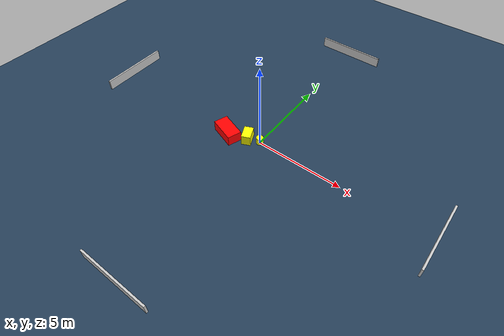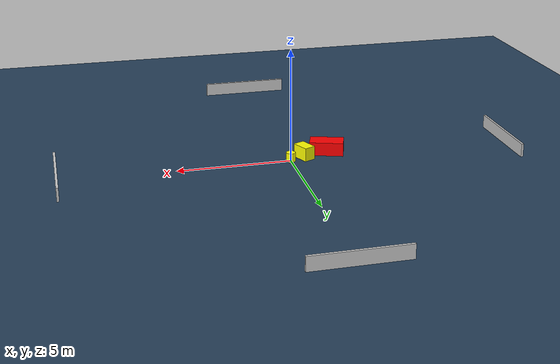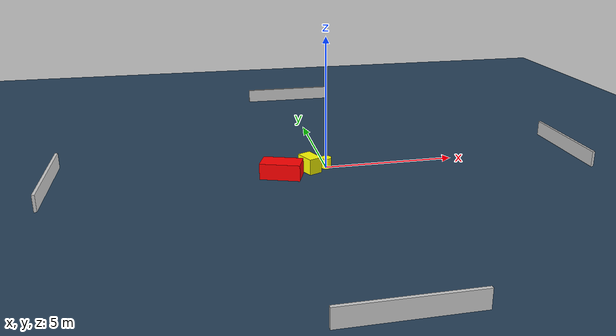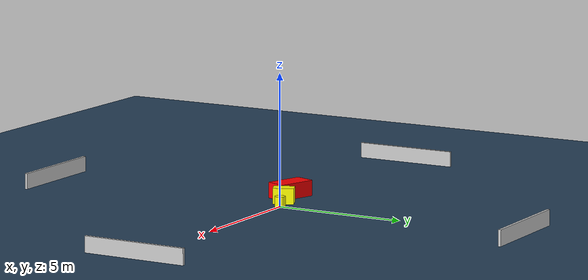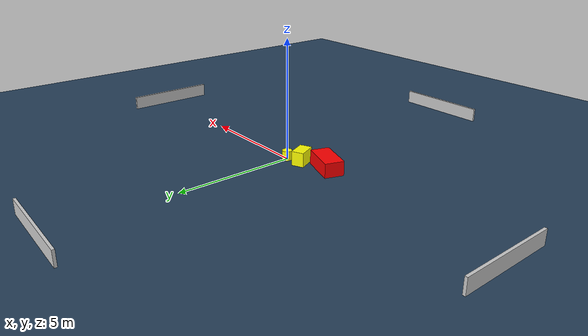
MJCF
<?xml version="1.0" ?>
<mujoco model="generated_environment">
  <option timestep="0.01" integrator="RK4" cone="elliptic"/>
  <default>
    <geom density="1"/>
  </default>
  <asset>
    <texture builtin="gradient" height="3072" name="skybox" rgb1="0.3 0.5 0.7" rgb2="0 0 0" type="skybox" width="512"/>
    <texture builtin="checker" height="300" name="groundplane" rgb1="0.2 0.3 0.4" rgb2="0.1 0.2 0.3" type="2d" width="300"/>
    <material name="groundplane" reflectance="0.2" texrepeat="5 5" texture="groundplane"/>
  </asset>
  <worldbody>
    <light dir="0 0 -1" directional="true" pos="0 0 1.5"/>
    <geom condim="3" friction="0.5 0.005 0.001" material="groundplane" name="floor" pos="0 0 0" size="0 0 0.05" type="plane"/>
    <body name="walls">
      <geom name="wall_1" condim="4" pos="-10.0 0.0 0.3" rgba="0.800000011920929 0.800000011920929 0.800000011920929 1.0" size="0.05 2.0 0.3" type="box"/>
      <geom name="wall_2" condim="4" pos="10.0 0.0 0.3" rgba="0.800000011920929 0.800000011920929 0.800000011920929 1.0" size="0.05 2.0 0.3" type="box"/>
      <geom name="wall_3" condim="4" pos="0.0 -10.0 0.3" rgba="0.800000011920929 0.800000011920929 0.800000011920929 1.0" size="2.0 0.05 0.3" type="box"/>
      <geom name="wall_4" condim="4" pos="0.0 10.0 0.3" rgba="0.800000011920929 0.800000011920929 0.800000011920929 1.0" size="2.0 0.05 0.3" type="box"/>
    </body>
    <body name="robot">
      <joint name="joint_x" type="slide" pos="0 0 0" axis="1 0 0"/>
      <joint name="joint_y" type="slide" pos="0 0 0" axis="0 1 0"/>
      <geom name="robot" type="cylinder" pos="0.0 0.0 0.2" size="0.2 0.2 0.0" mass="5.0" friction="1.0 0.005 0.0001" condim="4" rgba="1.0 1.0 0.0 1.0"/>
    </body>
    <body name="obstacle_1_movable">
      <geom name="obstacle_1_movable" condim="4" pos="-0.668088355004158 -0.22273075715411725 0.3" euler="0 0 114.11077702819978" friction="0.0 0.005 0.001" rgba="1.0 1.0 0.0 1.0" size="0.39726766031944316 0.25723807710038643 0.3" type="box" mass="0.1"/>
      <joint type="free"/>
    </body>
    <body name="obstacle_2_static">
      <geom name="obstacle_2_static" condim="4" pos="-1.7830181365194282 -0.5752212017111356 0.3" euler="0 0 161.11242835974784" friction="0.0 0.005 0.001" rgba="1.0 0.0 0.0 1.0" size="0.7455275472258174 0.3984254027137607 0.3" type="box"/>
    </body>
  </worldbody>
  <actuator>
    <motor name="actuator_x" joint="joint_x" gear="1" ctrlrange="-1 1"/>
    <motor name="actuator_y" joint="joint_y" gear="1" ctrlrange="-1 1"/>
  </actuator>
</mujoco>
